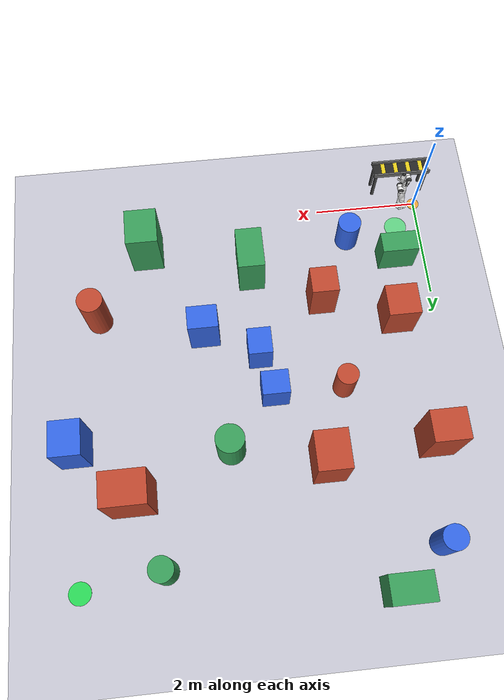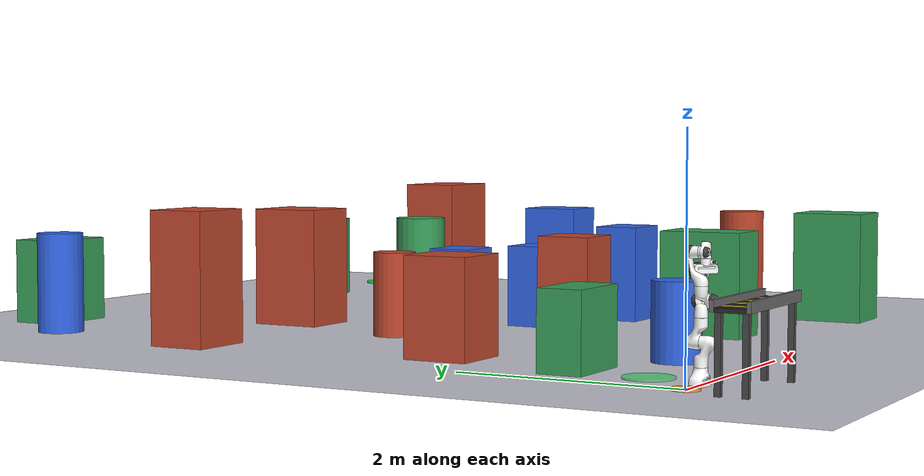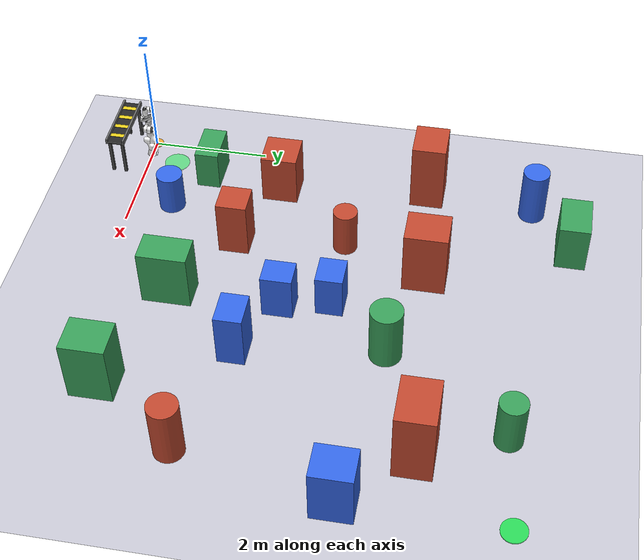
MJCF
<mujoco model="warehouse_integrated">
  <compiler angle="radian" meshdir="franka_emika_panda/assets" autolimits="true"/>
  <option gravity="0 0 -9.81" timestep="0.005" integrator="implicitfast"/>

  <visual>
    <headlight diffuse="0.8 0.8 0.8" ambient="0.4 0.4 0.4" specular="0 0 0"/>
    <rgba haze="0.8 0.9 1.0 1"/>
  </visual>

  <!-- Panda defaults (class="panda") -->
  <default>
    <default class="panda">
      <material specular="0.5" shininess="0.25" />
      <joint armature="0.1" damping="1" axis="0 0 1" range="-2.8973 2.8973" />
      <general dyntype="none" biastype="affine" ctrlrange="-2.8973 2.8973" forcerange="-87 87" />
      <default class="finger">
        <joint axis="0 1 0" type="slide" range="0 0.04" />
      </default>

      <default class="visual">
        <geom type="mesh" contype="0" conaffinity="0" group="2" />
      </default>
      <default class="collision">
        <geom type="mesh" group="3" />
        <default class="fingertip_pad_collision_1">
          <geom type="box" size="0.0085 0.004 0.0085" pos="0 0.0055 0.0445" />
        </default>
        <default class="fingertip_pad_collision_2">
          <geom type="box" size="0.003 0.002 0.003" pos="0.0055 0.002 0.05" />
        </default>
        <default class="fingertip_pad_collision_3">
          <geom type="box" size="0.003 0.002 0.003" pos="-0.0055 0.002 0.05" />
        </default>
        <default class="fingertip_pad_collision_4">
          <geom type="box" size="0.003 0.002 0.0035" pos="0.0055 0.002 0.0395" />
        </default>
        <default class="fingertip_pad_collision_5">
          <geom type="box" size="0.003 0.002 0.0035" pos="-0.0055 0.002 0.0395" />
        </default>
      </default>
    </default>
  </default>

  <asset>
    <!-- Panda mesh assets -->
    <material class="panda" name="white" rgba="1 1 1 1" />

    <material class="panda" name="off_white" rgba="0.901961 0.921569 0.929412 1" />

    <material class="panda" name="black" rgba="0.25 0.25 0.25 1" />

    <material class="panda" name="green" rgba="0 1 0 1" />

    <material class="panda" name="light_blue" rgba="0.039216 0.541176 0.780392 1" />

    <mesh name="link0_c" file="link0.stl" />

    <mesh name="link1_c" file="link1.stl" />

    <mesh name="link2_c" file="link2.stl" />

    <mesh name="link3_c" file="link3.stl" />

    <mesh name="link4_c" file="link4.stl" />

    <mesh name="link5_c0" file="link5_collision_0.obj" />

    <mesh name="link5_c1" file="link5_collision_1.obj" />

    <mesh name="link5_c2" file="link5_collision_2.obj" />

    <mesh name="link6_c" file="link6.stl" />

    <mesh name="link7_c" file="link7.stl" />

    <mesh name="hand_c" file="hand.stl" />

    <mesh file="link0_0.obj" />

    <mesh file="link0_1.obj" />

    <mesh file="link0_2.obj" />

    <mesh file="link0_3.obj" />

    <mesh file="link0_4.obj" />

    <mesh file="link0_5.obj" />

    <mesh file="link0_7.obj" />

    <mesh file="link0_8.obj" />

    <mesh file="link0_9.obj" />

    <mesh file="link0_10.obj" />

    <mesh file="link0_11.obj" />

    <mesh file="link1.obj" />

    <mesh file="link2.obj" />

    <mesh file="link3_0.obj" />

    <mesh file="link3_1.obj" />

    <mesh file="link3_2.obj" />

    <mesh file="link3_3.obj" />

    <mesh file="link4_0.obj" />

    <mesh file="link4_1.obj" />

    <mesh file="link4_2.obj" />

    <mesh file="link4_3.obj" />

    <mesh file="link5_0.obj" />

    <mesh file="link5_1.obj" />

    <mesh file="link5_2.obj" />

    <mesh file="link6_0.obj" />

    <mesh file="link6_1.obj" />

    <mesh file="link6_2.obj" />

    <mesh file="link6_3.obj" />

    <mesh file="link6_4.obj" />

    <mesh file="link6_5.obj" />

    <mesh file="link6_6.obj" />

    <mesh file="link6_7.obj" />

    <mesh file="link6_8.obj" />

    <mesh file="link6_9.obj" />

    <mesh file="link6_10.obj" />

    <mesh file="link6_11.obj" />

    <mesh file="link6_12.obj" />

    <mesh file="link6_13.obj" />

    <mesh file="link6_14.obj" />

    <mesh file="link6_15.obj" />

    <mesh file="link6_16.obj" />

    <mesh file="link7_0.obj" />

    <mesh file="link7_1.obj" />

    <mesh file="link7_2.obj" />

    <mesh file="link7_3.obj" />

    <mesh file="link7_4.obj" />

    <mesh file="link7_5.obj" />

    <mesh file="link7_6.obj" />

    <mesh file="link7_7.obj" />

    <mesh file="hand_0.obj" />

    <mesh file="hand_1.obj" />

    <mesh file="hand_2.obj" />

    <mesh file="hand_3.obj" />

    <mesh file="hand_4.obj" />

    <mesh file="finger_0.obj" />

    <mesh file="finger_1.obj" />

    <!-- Warehouse materials -->
    <texture name="grid" type="2d" builtin="checker" width="512" height="512"
             rgb1="0.85 0.85 0.90" rgb2="0.70 0.70 0.75"/>
    <material name="floor_mat"  texture="grid" texrepeat="6 6" reflectance="0.15"/>
    <material name="body_mat"   rgba="0.20 0.55 0.85 1"/>
    <material name="wheel_mat"  rgba="0.15 0.15 0.15 1"/>
    <material name="trail_mat"  rgba="1.00 0.65 0.10 0.80"/>
    <material name="obs_r_mat"  rgba="0.75 0.28 0.18 0.90"/>
    <material name="obs_g_mat"  rgba="0.22 0.62 0.35 0.90"/>
    <material name="obs_b_mat"  rgba="0.20 0.40 0.90 0.90"/>
  </asset>

  <worldbody>
    <geom name="floor" type="plane" size="10 10 0.1"
          material="floor_mat" contype="0" conaffinity="0" pos="2 2 0"/>
    <geom name="start_marker" type="cylinder" size="0.12 0.01" pos="0 0 0.01"
          material="trail_mat" contype="0" conaffinity="0"/>

    <!-- Load zone marker (where AMR parks to receive package) -->
    <geom name="load_zone_marker" type="cylinder" size="0.22 0.008"
          pos="0.45 0.50 0.01" rgba="0.10 0.90 0.30 0.55"
          contype="0" conaffinity="0"/>

    <!-- Delivery goal marker -->
    <body name="goal_marker" mocap="true" pos="7 7 0">
      <geom type="cylinder" size="0.20 0.012"
            rgba="0.10 0.90 0.30 0.85" contype="0" conaffinity="0"/>
    </body>

    <!-- Warehouse obstacles -->
    <geom name="obs_d"    type="box"      size="0.35 0.20 0.35"
          pos="0.6 1.2 0.35"   material="obs_g_mat" contype="2" conaffinity="0"/>
    <geom name="obs_f"    type="cylinder" size="0.22 0.35"
          pos="1.5 0.7 0.35"   material="obs_b_mat" contype="2" conaffinity="0"/>
    <geom name="obs_b"    type="box"      size="0.25 0.40 0.50"
          pos="3.5 1.2 0.50"   material="obs_g_mat" contype="2" conaffinity="0"/>
    <geom name="obs_a"    type="box"      size="0.30 0.30 0.45"
          pos="0.8 2.5 0.45"   material="obs_r_mat" contype="2" conaffinity="0"/>
    <geom name="obs_test" type="box"      size="0.25 0.25 0.50"
          pos="2.2 2.0 0.50"   material="obs_r_mat" contype="2" conaffinity="0"/>
    <geom name="obs_e"    type="box"      size="0.22 0.25 0.40"
          pos="3.5 3.0 0.40"   material="obs_b_mat" contype="2" conaffinity="0"/>
    <geom name="obs_c"    type="cylinder" size="0.20 0.40"
          pos="2.0 3.8 0.40"   material="obs_r_mat" contype="2" conaffinity="0"/>
    <geom name="obs_g_1"  type="box"      size="0.25 0.22 0.38"
          pos="3.3 3.8 0.38"   material="obs_b_mat" contype="2" conaffinity="0"/>
    <geom name="obs_h"    type="box"      size="0.30 0.35 0.55"
          pos="5.5 0.6 0.55"   material="obs_g_mat" contype="2" conaffinity="0"/>
    <geom name="obs_m"    type="box"      size="0.28 0.22 0.48"
          pos="4.5 2.5 0.48"   material="obs_b_mat" contype="2" conaffinity="0"/>
    <geom name="obs_p"    type="cylinder" size="0.24 0.52"
          pos="6.5 2.0 0.52"   material="obs_r_mat" contype="2" conaffinity="0"/>
    <geom name="obs_i"    type="box"      size="0.32 0.28 0.62"
          pos="0.5 5.0 0.62"   material="obs_r_mat" contype="2" conaffinity="0"/>
    <geom name="obs_j"    type="cylinder" size="0.22 0.48"
          pos="0.7 6.8 0.48"   material="obs_b_mat" contype="2" conaffinity="0"/>
    <geom name="obs_q"    type="box"      size="0.38 0.25 0.42"
          pos="1.5 7.5 0.42"   material="obs_g_mat" contype="2" conaffinity="0"/>
    <geom name="obs_n"    type="box"      size="0.30 0.35 0.58"
          pos="2.5 5.2 0.58"   material="obs_r_mat" contype="2" conaffinity="0"/>
    <geom name="obs_o"    type="cylinder" size="0.26 0.50"
          pos="4.2 4.8 0.50"   material="obs_g_mat" contype="2" conaffinity="0"/>
    <geom name="obs_k"    type="box"      size="0.40 0.30 0.65"
          pos="6.0 5.5 0.65"   material="obs_r_mat" contype="2" conaffinity="0"/>
    <geom name="obs_l"    type="cylinder" size="0.22 0.44"
          pos="5.5 6.8 0.44"   material="obs_g_mat" contype="2" conaffinity="0"/>
    <geom name="obs_r_1"  type="box"      size="0.28 0.32 0.50"
          pos="7.0 4.5 0.50"   material="obs_b_mat" contype="2" conaffinity="0"/>

    <!-- Franka Panda arm (positioned in world) -->
    <body name="panda_mount" pos="0.3000 0.0000 0.0000">
      <body name="link0" childclass="panda">
      <inertial mass="0.629769" pos="-0.041018 -0.00014 0.049974" fullinertia="0.00315 0.00388 0.004285 8.2904e-7 0.00015 8.2299e-6" />
      <geom mesh="link0_0" material="off_white" class="visual" />
      <geom mesh="link0_1" material="black" class="visual" />
      <geom mesh="link0_2" material="off_white" class="visual" />
      <geom mesh="link0_3" material="black" class="visual" />
      <geom mesh="link0_4" material="off_white" class="visual" />
      <geom mesh="link0_5" material="black" class="visual" />
      <geom mesh="link0_7" material="white" class="visual" />
      <geom mesh="link0_8" material="white" class="visual" />
      <geom mesh="link0_9" material="black" class="visual" />
      <geom mesh="link0_10" material="off_white" class="visual" />
      <geom mesh="link0_11" material="white" class="visual" />
      <geom mesh="link0_c" class="collision" />
      <body name="link1" pos="0 0 0.333">
        <inertial mass="4.970684" pos="0.003875 0.002081 -0.04762" fullinertia="0.70337 0.70661 0.0091170 -0.00013900 0.0067720 0.019169" />
        <joint name="joint1" />
        <geom material="white" mesh="link1" class="visual" />
        <geom mesh="link1_c" class="collision" />
        <body name="link2" quat="1 -1 0 0">
          <inertial mass="0.646926" pos="-0.003141 -0.02872 0.003495" fullinertia="0.0079620 2.8110e-2 2.5995e-2 -3.925e-3 1.0254e-2 7.04e-4" />
          <joint name="joint2" range="-1.7628 1.7628" />
          <geom material="white" mesh="link2" class="visual" />
          <geom mesh="link2_c" class="collision" />
          <body name="link3" pos="0 -0.316 0" quat="1 1 0 0">
            <joint name="joint3" />
            <inertial mass="3.228604" pos="2.7518e-2 3.9252e-2 -6.6502e-2" fullinertia="3.7242e-2 3.6155e-2 1.083e-2 -4.761e-3 -1.1396e-2 -1.2805e-2" />
            <geom mesh="link3_0" material="white" class="visual" />
            <geom mesh="link3_1" material="white" class="visual" />
            <geom mesh="link3_2" material="white" class="visual" />
            <geom mesh="link3_3" material="black" class="visual" />
            <geom mesh="link3_c" class="collision" />
            <body name="link4" pos="0.0825 0 0" quat="1 1 0 0">
              <inertial mass="3.587895" pos="-5.317e-2 1.04419e-1 2.7454e-2" fullinertia="2.5853e-2 1.9552e-2 2.8323e-2 7.796e-3 -1.332e-3 8.641e-3" />
              <joint name="joint4" range="-3.0718 -0.0698" />
              <geom mesh="link4_0" material="white" class="visual" />
              <geom mesh="link4_1" material="white" class="visual" />
              <geom mesh="link4_2" material="black" class="visual" />
              <geom mesh="link4_3" material="white" class="visual" />
              <geom mesh="link4_c" class="collision" />
              <body name="link5" pos="-0.0825 0.384 0" quat="1 -1 0 0">
                <inertial mass="1.225946" pos="-1.1953e-2 4.1065e-2 -3.8437e-2" fullinertia="3.5549e-2 2.9474e-2 8.627e-3 -2.117e-3 -4.037e-3 2.29e-4" />
                <joint name="joint5" />
                <geom mesh="link5_0" material="black" class="visual" />
                <geom mesh="link5_1" material="white" class="visual" />
                <geom mesh="link5_2" material="white" class="visual" />
                <geom mesh="link5_c0" class="collision" />
                <geom mesh="link5_c1" class="collision" />
                <geom mesh="link5_c2" class="collision" />
                <body name="link6" quat="1 1 0 0">
                  <inertial mass="1.666555" pos="6.0149e-2 -1.4117e-2 -1.0517e-2" fullinertia="1.964e-3 4.354e-3 5.433e-3 1.09e-4 -1.158e-3 3.41e-4" />
                  <joint name="joint6" range="-0.0175 3.7525" />
                  <geom mesh="link6_0" material="off_white" class="visual" />
                  <geom mesh="link6_1" material="white" class="visual" />
                  <geom mesh="link6_2" material="black" class="visual" />
                  <geom mesh="link6_3" material="white" class="visual" />
                  <geom mesh="link6_4" material="white" class="visual" />
                  <geom mesh="link6_5" material="white" class="visual" />
                  <geom mesh="link6_6" material="white" class="visual" />
                  <geom mesh="link6_7" material="light_blue" class="visual" />
                  <geom mesh="link6_8" material="light_blue" class="visual" />
                  <geom mesh="link6_9" material="black" class="visual" />
                  <geom mesh="link6_10" material="black" class="visual" />
                  <geom mesh="link6_11" material="white" class="visual" />
                  <geom mesh="link6_12" material="green" class="visual" />
                  <geom mesh="link6_13" material="white" class="visual" />
                  <geom mesh="link6_14" material="black" class="visual" />
                  <geom mesh="link6_15" material="black" class="visual" />
                  <geom mesh="link6_16" material="white" class="visual" />
                  <geom mesh="link6_c" class="collision" />
                  <body name="link7" pos="0.088 0 0" quat="1 1 0 0">
                    <inertial mass="7.35522e-01" pos="1.0517e-2 -4.252e-3 6.1597e-2" fullinertia="1.2516e-2 1.0027e-2 4.815e-3 -4.28e-4 -1.196e-3 -7.41e-4" />
                    <joint name="joint7" />
                    <geom mesh="link7_0" material="white" class="visual" />
                    <geom mesh="link7_1" material="black" class="visual" />
                    <geom mesh="link7_2" material="black" class="visual" />
                    <geom mesh="link7_3" material="black" class="visual" />
                    <geom mesh="link7_4" material="black" class="visual" />
                    <geom mesh="link7_5" material="black" class="visual" />
                    <geom mesh="link7_6" material="black" class="visual" />
                    <geom mesh="link7_7" material="white" class="visual" />
                    <geom mesh="link7_c" class="collision" />
                    <body name="hand" pos="0 0 0.107" quat="0.9238795 0 0 -0.3826834">
                      <inertial mass="0.73" pos="-0.01 0 0.03" diaginertia="0.001 0.0025 0.0017" />
                      <geom mesh="hand_0" material="off_white" class="visual" />
                      <geom mesh="hand_1" material="black" class="visual" />
                      <geom mesh="hand_2" material="black" class="visual" />
                      <geom mesh="hand_3" material="white" class="visual" />
                      <geom mesh="hand_4" material="off_white" class="visual" />
                      <geom mesh="hand_c" class="collision" />
                      <body name="left_finger" pos="0 0 0.0584">
                        <inertial mass="0.015" pos="0 0 0" diaginertia="2.375e-6 2.375e-6 7.5e-7" />
                        <joint name="finger_joint1" class="finger" />
                        <geom mesh="finger_0" material="off_white" class="visual" />
                        <geom mesh="finger_1" material="black" class="visual" />
                        <geom mesh="finger_0" class="collision" />
                        <geom class="fingertip_pad_collision_1" />
                        <geom class="fingertip_pad_collision_2" />
                        <geom class="fingertip_pad_collision_3" />
                        <geom class="fingertip_pad_collision_4" />
                        <geom class="fingertip_pad_collision_5" />
                      </body>
                      <body name="right_finger" pos="0 0 0.0584" quat="0 0 0 1">
                        <inertial mass="0.015" pos="0 0 0" diaginertia="2.375e-6 2.375e-6 7.5e-7" />
                        <joint name="finger_joint2" class="finger" />
                        <geom mesh="finger_0" material="off_white" class="visual" />
                        <geom mesh="finger_1" material="black" class="visual" />
                        <geom mesh="finger_0" class="collision" />
                        <geom class="fingertip_pad_collision_1" />
                        <geom class="fingertip_pad_collision_2" />
                        <geom class="fingertip_pad_collision_3" />
                        <geom class="fingertip_pad_collision_4" />
                        <geom class="fingertip_pad_collision_5" />
                      </body>
                    </body>
                  </body>
                </body>
              </body>
            </body>
          </body>
        </body>
      </body>
    </body>

    </body>

    <!-- Conveyor belt + packages -->

    <!-- Conveyor belt -->
    <body name="conveyor_body" pos="0.300 -0.450 0.650">
      <geom name="conv_belt"    type="box" size="0.55 0.13 0.018"
            rgba="0.15 0.15 0.15 1" contype="0" conaffinity="0"/>
      <geom name="conv_s0" type="box" size="0.04 0.13 0.021"
            pos="-0.40 0 0" rgba="0.90 0.80 0.10 1" contype="0" conaffinity="0"/>
      <geom name="conv_s1" type="box" size="0.04 0.13 0.021"
            pos="-0.15 0 0" rgba="0.90 0.80 0.10 1" contype="0" conaffinity="0"/>
      <geom name="conv_s2" type="box" size="0.04 0.13 0.021"
            pos=" 0.10 0 0" rgba="0.90 0.80 0.10 1" contype="0" conaffinity="0"/>
      <geom name="conv_s3" type="box" size="0.04 0.13 0.021"
            pos=" 0.35 0 0" rgba="0.90 0.80 0.10 1" contype="0" conaffinity="0"/>
      <geom name="conv_rl" type="box" size="0.56 0.016 0.045"
            pos="0  0.146 0.030" rgba="0.42 0.42 0.42 1" contype="0" conaffinity="0"/>
      <geom name="conv_rr" type="box" size="0.56 0.016 0.045"
            pos="0 -0.146 0.030" rgba="0.42 0.42 0.42 1" contype="0" conaffinity="0"/>
      <geom type="box" size="0.025 0.025 0.325"
            pos="-0.50  0.11 -0.325" rgba="0.28 0.28 0.28 1" contype="0" conaffinity="0"/>
      <geom type="box" size="0.025 0.025 0.325"
            pos="-0.50 -0.11 -0.325" rgba="0.28 0.28 0.28 1" contype="0" conaffinity="0"/>
      <geom type="box" size="0.025 0.025 0.325"
            pos=" 0.50  0.11 -0.325" rgba="0.28 0.28 0.28 1" contype="0" conaffinity="0"/>
      <geom type="box" size="0.025 0.025 0.325"
            pos=" 0.50 -0.11 -0.325" rgba="0.28 0.28 0.28 1" contype="0" conaffinity="0"/>
    </body>
    <!-- Package mocap bodies (kinematically controlled) -->
    <body name="pkg_body_0" mocap="true" pos="0 0 -10">
      <geom name="pkg_geom_0" type="box" size="0.085 0.085 0.075"
            rgba="0.5 0.5 0.5 0" contype="0" conaffinity="0"/>
    </body>
    <body name="pkg_body_1" mocap="true" pos="0 0 -10">
      <geom name="pkg_geom_1" type="box" size="0.085 0.085 0.075"
            rgba="0.5 0.5 0.5 0" contype="0" conaffinity="0"/>
    </body>
    <body name="pkg_body_2" mocap="true" pos="0 0 -10">
      <geom name="pkg_geom_2" type="box" size="0.085 0.085 0.075"
            rgba="0.5 0.5 0.5 0" contype="0" conaffinity="0"/>
    </body>
    <body name="pkg_body_3" mocap="true" pos="0 0 -10">
      <geom name="pkg_geom_3" type="box" size="0.085 0.085 0.075"
            rgba="0.5 0.5 0.5 0" contype="0" conaffinity="0"/>
    </body>

    <!-- AMR robot -->

  </worldbody>

  <tendon>
    <fixed name="split">
      <joint joint="finger_joint1" coef="0.5" />
      <joint joint="finger_joint2" coef="0.5" />
    </fixed>
  </tendon>

  <equality>
    <joint joint1="finger_joint1" joint2="finger_joint2" solimp="0.95 0.99 0.001" solref="0.005 1" />
  </equality>

  <contact>
    <exclude body1="link0" body2="link1" />
  </contact>

  <actuator>
    <!-- Panda actuators (indices 0-7) -->
    <general class="panda" name="actuator1" joint="joint1" gainprm="4500" biasprm="0 -4500 -450" />

    <general class="panda" name="actuator2" joint="joint2" gainprm="4500" biasprm="0 -4500 -450" ctrlrange="-1.7628 1.7628" />

    <general class="panda" name="actuator3" joint="joint3" gainprm="3500" biasprm="0 -3500 -350" />

    <general class="panda" name="actuator4" joint="joint4" gainprm="3500" biasprm="0 -3500 -350" ctrlrange="-3.0718 -0.0698" />

    <general class="panda" name="actuator5" joint="joint5" gainprm="2000" biasprm="0 -2000 -200" forcerange="-12 12" />

    <general class="panda" name="actuator6" joint="joint6" gainprm="2000" biasprm="0 -2000 -200" forcerange="-12 12" ctrlrange="-0.0175 3.7525" />

    <general class="panda" name="actuator7" joint="joint7" gainprm="2000" biasprm="0 -2000 -200" forcerange="-12 12" />

    <general class="panda" name="actuator8" tendon="split" forcerange="-100 100" ctrlrange="0 255" gainprm="0.01568627451 0 0" biasprm="0 -100 -10" />

    <!-- AMR velocity actuators (indices 8-10) -->

  </actuator>
</mujoco>
